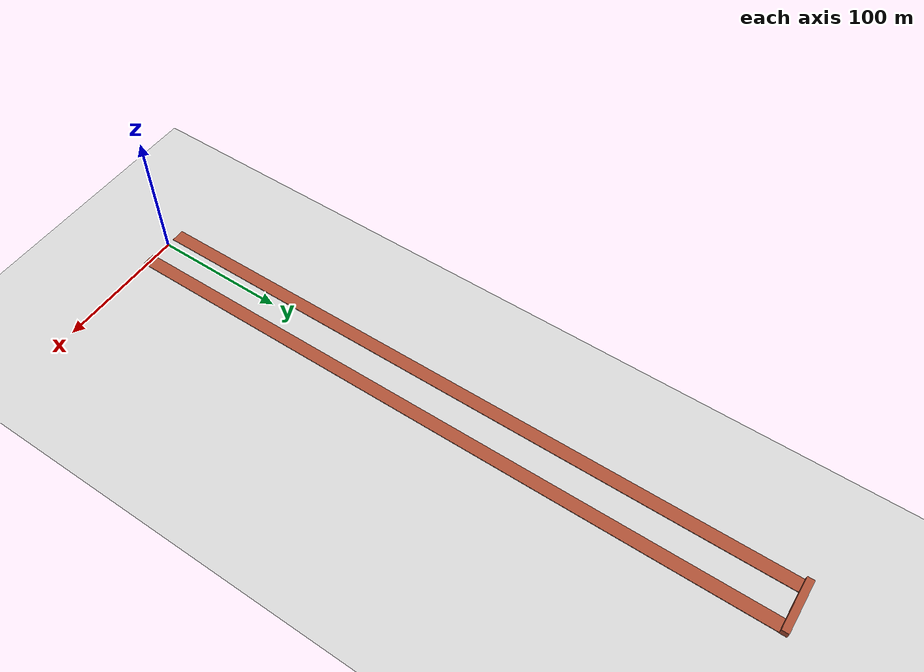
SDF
<sdf version="1.6">
 <world name="default">
  <light name="sun" type="directional">
   <pose>0 0 10 0 -0 0</pose>
   <diffuse>0.8 0.8 0.8 1</diffuse>
   <specular>0.2 0.2 0.2 1</specular>
   <attenuation>
    <range>1000</range>
    <constant>0.9</constant>
    <linear>0.01</linear>
    <quadratic>0.001</quadratic>
   </attenuation>
   <direction>-0.5 0.1 -0.9</direction>
  </light>
  <model name="ground_plane">
   <static>1</static>
   <link name="link">
    <collision name="collision">
     <geometry><plane><normal>0 0 1</normal><size>100 100</size></plane></geometry>
     <surface><friction><ode><mu>100</mu><mu2>50</mu2></ode></friction></surface>
    </collision>
    <visual name="visual">
     <cast_shadows>0</cast_shadows>
     <geometry><plane><normal>0 0 1</normal><size>100 100</size></plane></geometry>
     <material>
      <script><uri>file://media/materials/scripts/gazebo.material</uri><name>Gazebo/Grey</name></script>
     </material>
    </visual>
   </link>
  </model>
  <gravity>0 0 -9.8</gravity>
  <magnetic_field>6e-06 2.3e-05 -4.2e-05</magnetic_field>
  <atmosphere type="adiabatic"/>
  <physics name="default_physics" default="0" type="ode">
   <max_step_size>0.001</max_step_size>
   <real_time_factor>1</real_time_factor>
   <real_time_update_rate>1000</real_time_update_rate>
  </physics>
  <scene><ambient>0.4 0.4 0.4 1</ambient><background>0.7 0.7 0.7 1</background><shadows>1</shadows></scene>
  <audio><device>default</device></audio>
  <spherical_coordinates>
   <surface_model>EARTH_WGS84</surface_model>
   <latitude_deg>0</latitude_deg>
   <longitude_deg>0</longitude_deg>
   <elevation>0</elevation>
   <heading_deg>0</heading_deg>
  </spherical_coordinates>
  <model name="road">
   <pose>3.40376 248.581 0 0 0 -1.5661</pose>
   <link name="Wall_43">
    <collision name="Wall_43_Collision">
     <geometry><box><size>500 10 0.5</size></box></geometry>
     <pose>0 0 0.25 0 -0 0</pose>
    </collision>
    <visual name="Wall_43_Visual">
     <pose>0 0 0.25 0 -0 0</pose>
     <geometry><box><size>500 10 0.5</size></box></geometry>
     <material>
      <script><uri>file://media/materials/scripts/gazebo.material</uri><name>Gazebo/Bricks</name></script>
      <ambient>0.435294 0.796078 0.67451 1</ambient>
     </material>
     <meta><layer>0</layer></meta>
    </visual>
    <pose>1.18259 14.8158 0 0 -0 0</pose>
   </link>
   <link name="Wall_46">
    <collision name="Wall_46_Collision">
     <geometry><box><size>40 5 5</size></box></geometry>
     <pose>0 0 2.5 0 -0 0</pose>
    </collision>
    <visual name="Wall_46_Visual">
     <pose>0 0 2.5 0 -0 0</pose>
     <geometry><box><size>40 5 5</size></box></geometry>
     <material>
      <script><uri>file://media/materials/scripts/gazebo.material</uri><name>Gazebo/Bricks</name></script>
      <ambient>1 0.764706 0.305882 1</ambient>
     </material>
     <meta><layer>0</layer></meta>
    </visual>
    <pose>-248.683 0 0 0 -0 -1.5708</pose>
   </link>
   <link name="Wall_48">
    <collision name="Wall_48_Collision">
     <geometry><box><size>500 10 0.5</size></box></geometry>
     <pose>0 0 0.25 0 -0 0</pose>
    </collision>
    <visual name="Wall_48_Visual">
     <pose>0 0 0.25 0 -0 0</pose>
     <geometry><box><size>500 10 0.5</size></box></geometry>
     <material>
      <script><uri>file://media/materials/scripts/gazebo.material</uri><name>Gazebo/Bricks</name></script>
      <ambient>0.435294 0.796078 0.67451 1</ambient>
     </material>
     <meta><layer>0</layer></meta>
    </visual>
    <pose>-1.02159 -14.9906 0 0 -0 0</pose>
   </link>
   <static>1</static>
  </model>
 </world>
</sdf>
